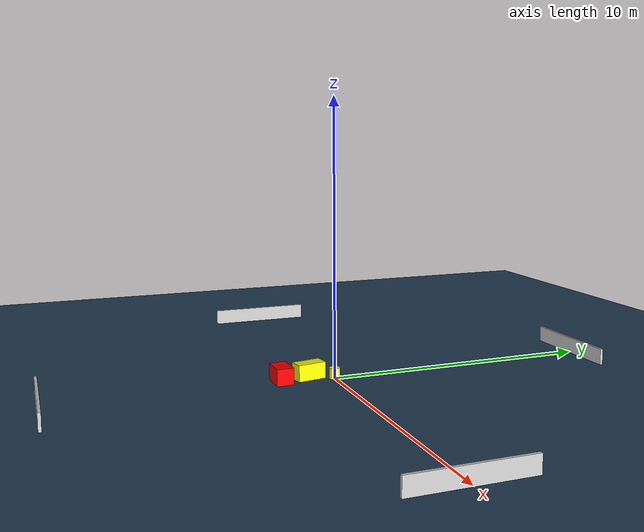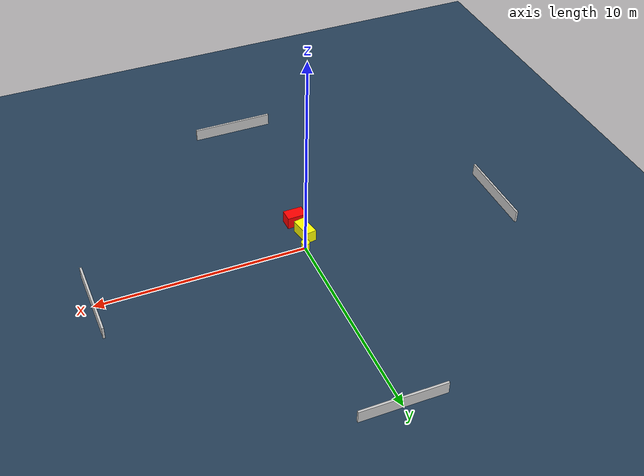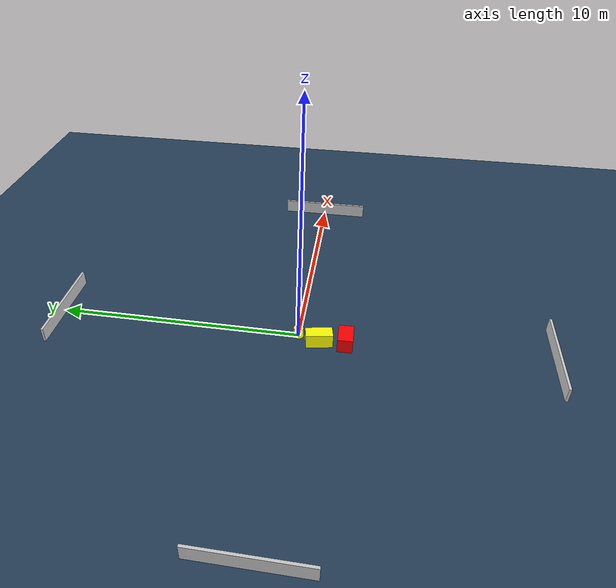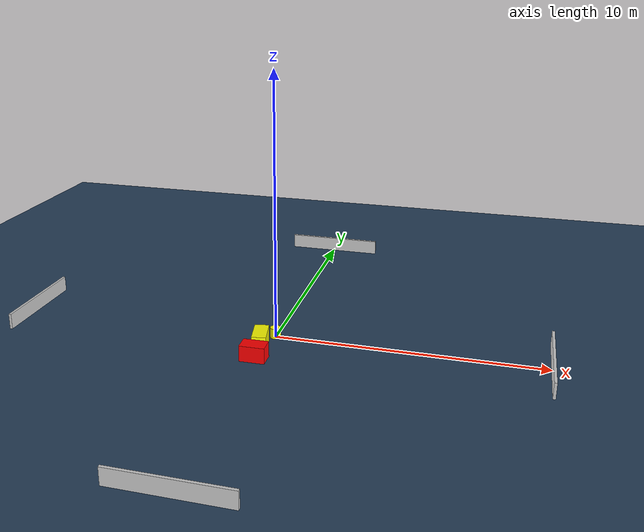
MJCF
<?xml version="1.0" ?>
<mujoco model="generated_environment">
  <option timestep="0.01" integrator="RK4" cone="elliptic"/>
  <default>
    <geom density="1"/>
  </default>
  <asset>
    <texture builtin="gradient" height="3072" name="skybox" rgb1="0.3 0.5 0.7" rgb2="0 0 0" type="skybox" width="512"/>
    <texture builtin="checker" height="300" name="groundplane" rgb1="0.2 0.3 0.4" rgb2="0.1 0.2 0.3" type="2d" width="300"/>
    <material name="groundplane" reflectance="0.2" texrepeat="5 5" texture="groundplane"/>
  </asset>
  <worldbody>
    <light dir="0 0 -1" directional="true" pos="0 0 1.5"/>
    <geom condim="3" friction="0.5 0.005 0.001" material="groundplane" name="floor" pos="0 0 0" size="0 0 0.05" type="plane"/>
    <body name="walls">
      <geom name="wall_1" condim="4" pos="-10.0 0.0 0.3" rgba="0.800000011920929 0.800000011920929 0.800000011920929 1.0" size="0.05 2.0 0.3" type="box"/>
      <geom name="wall_2" condim="4" pos="10.0 0.0 0.3" rgba="0.800000011920929 0.800000011920929 0.800000011920929 1.0" size="0.05 2.0 0.3" type="box"/>
      <geom name="wall_3" condim="4" pos="0.0 -10.0 0.3" rgba="0.800000011920929 0.800000011920929 0.800000011920929 1.0" size="2.0 0.05 0.3" type="box"/>
      <geom name="wall_4" condim="4" pos="0.0 10.0 0.3" rgba="0.800000011920929 0.800000011920929 0.800000011920929 1.0" size="2.0 0.05 0.3" type="box"/>
    </body>
    <body name="robot">
      <joint name="joint_x" type="slide" pos="0 0 0" axis="1 0 0"/>
      <joint name="joint_y" type="slide" pos="0 0 0" axis="0 1 0"/>
      <geom name="robot" type="cylinder" pos="0.0 0.0 0.2" size="0.2 0.2 0.0" mass="5.0" friction="1.0 0.005 0.0001" condim="4" rgba="1.0 1.0 0.0 1.0"/>
    </body>
    <body name="obstacle_1_movable">
      <geom name="obstacle_1_movable" condim="4" pos="-0.32795219748527993 -0.8539740684316125 0.3" euler="0 0 190.61370724396073" friction="0.0 0.005 0.001" rgba="1.0 1.0 0.0 1.0" size="0.26698584800089975 0.5372854963066813 0.3" type="box" mass="0.1"/>
      <joint type="free"/>
    </body>
    <body name="obstacle_2_static">
      <geom name="obstacle_2_static" condim="4" pos="-0.2405493282732488 -1.902206964491933 0.3" euler="0 0 270.95880443176435" friction="0.0 0.005 0.001" rgba="1.0 0.0 0.0 1.0" size="0.3047814688371259 0.4666763012286551 0.3" type="box"/>
    </body>
  </worldbody>
  <actuator>
    <motor name="actuator_x" joint="joint_x" gear="1" ctrlrange="-1 1"/>
    <motor name="actuator_y" joint="joint_y" gear="1" ctrlrange="-1 1"/>
  </actuator>
</mujoco>
